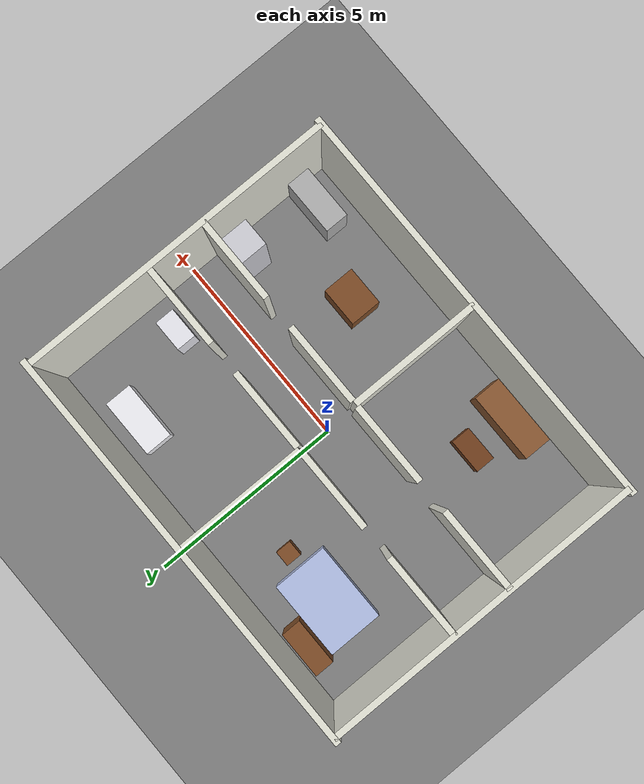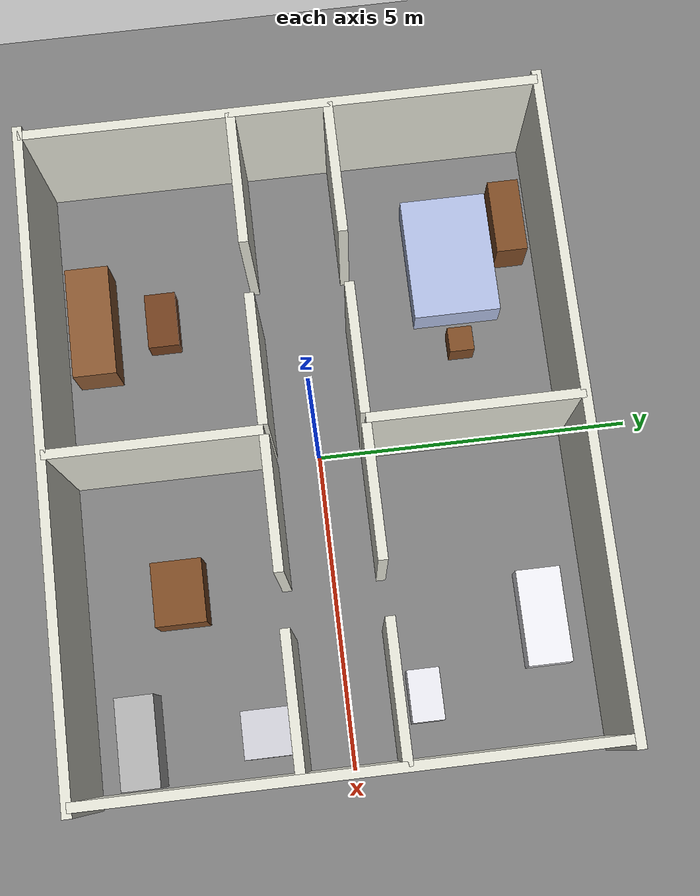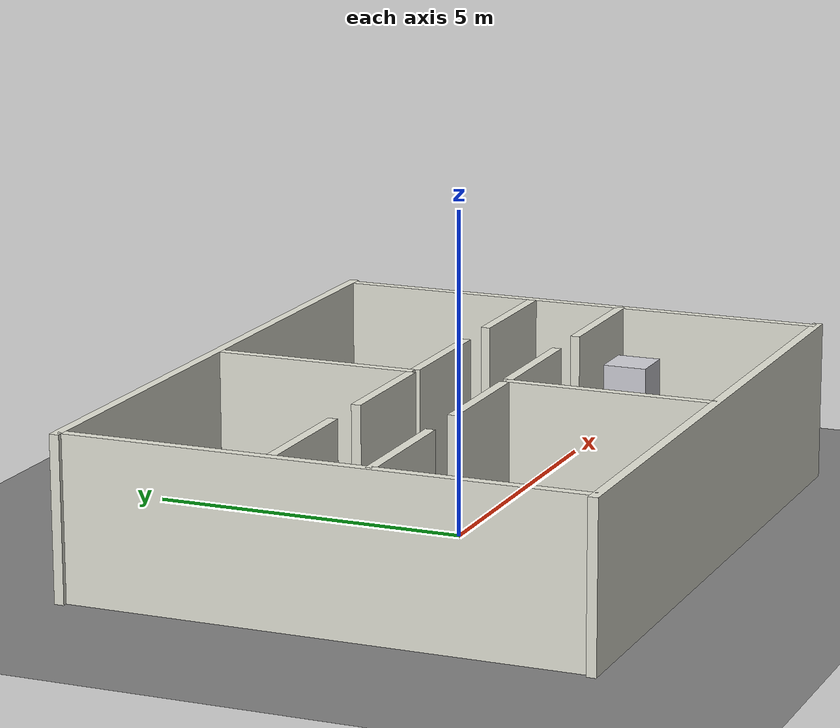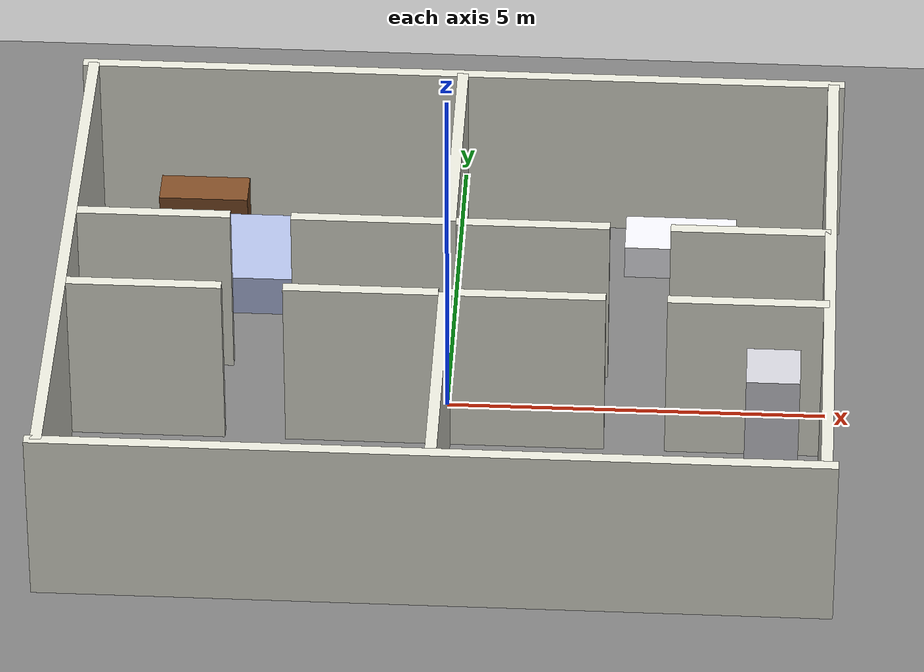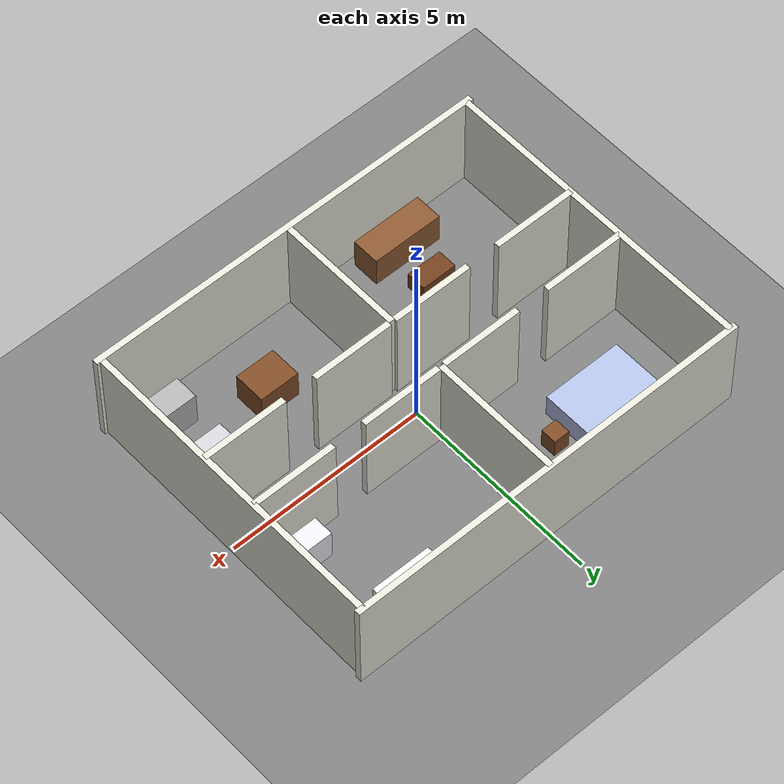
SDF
<?xml version="1.0" ?>
<sdf version="1.6">
  <world name="house">
    <physics name="1ms" type="ignored">
      <max_step_size>0.001</max_step_size>
      <real_time_factor>1.0</real_time_factor>
    </physics>
    <plugin filename="gz-sim-physics-system"
            name="gz::sim::systems::Physics"/>
    <plugin filename="gz-sim-user-commands-system"
            name="gz::sim::systems::UserCommands"/>
    <plugin filename="gz-sim-scene-broadcaster-system"
            name="gz::sim::systems::SceneBroadcaster"/>
    <plugin filename="gz-sim-contact-system"
            name="gz::sim::systems::Contact"/>
    <plugin filename="gz-sim-sensors-system"
            name="gz::sim::systems::Sensors">
      <render_engine>ogre2</render_engine>
    </plugin>
    <plugin filename="gz-sim-imu-system"
            name="gz::sim::systems::Imu"/>

    <light type="directional" name="sun">
      <cast_shadows>true</cast_shadows>
      <pose>0 0 10 0 0 0</pose>
      <diffuse>0.8 0.8 0.8 1</diffuse>
      <specular>0.2 0.2 0.2 1</specular>
      <attenuation>
        <range>1000</range>
        <constant>0.9</constant>
        <linear>0.01</linear>
        <quadratic>0.001</quadratic>
      </attenuation>
      <direction>-0.5 0.1 -0.9</direction>
    </light>

    <!-- Ground plane -->
    <model name="ground_plane">
      <static>true</static>
      <link name="link">
        <collision name="collision">
          <geometry><plane><normal>0 0 1</normal><size>100 100</size></plane></geometry>
        </collision>
        <visual name="visual">
          <geometry><plane><normal>0 0 1</normal><size>100 100</size></plane></geometry>
          <material>
            <ambient>0.5 0.5 0.5 1</ambient>
            <diffuse>0.5 0.5 0.5 1</diffuse>
          </material>
        </visual>
      </link>
    </model>

    <!-- ==================== EXTERIOR WALLS ==================== -->
    <model name="wall_north">
      <static>true</static>
      <pose>0 4 1.25 0 0 0</pose>
      <link name="link">
        <collision name="collision">
          <geometry><box><size>10.3 0.15 2.5</size></box></geometry>
        </collision>
        <visual name="visual">
          <geometry><box><size>10.3 0.15 2.5</size></box></geometry>
          <material>
            <ambient>0.9 0.9 0.85 1</ambient>
            <diffuse>0.9 0.9 0.85 1</diffuse>
          </material>
        </visual>
      </link>
    </model>

    <model name="wall_south">
      <static>true</static>
      <pose>0 -4 1.25 0 0 0</pose>
      <link name="link">
        <collision name="collision">
          <geometry><box><size>10.3 0.15 2.5</size></box></geometry>
        </collision>
        <visual name="visual">
          <geometry><box><size>10.3 0.15 2.5</size></box></geometry>
          <material>
            <ambient>0.9 0.9 0.85 1</ambient>
            <diffuse>0.9 0.9 0.85 1</diffuse>
          </material>
        </visual>
      </link>
    </model>

    <model name="wall_west">
      <static>true</static>
      <pose>-5 0 1.25 0 0 0</pose>
      <link name="link">
        <collision name="collision">
          <geometry><box><size>0.15 8.0 2.5</size></box></geometry>
        </collision>
        <visual name="visual">
          <geometry><box><size>0.15 8.0 2.5</size></box></geometry>
          <material>
            <ambient>0.9 0.9 0.85 1</ambient>
            <diffuse>0.9 0.9 0.85 1</diffuse>
          </material>
        </visual>
      </link>
    </model>

    <model name="wall_east">
      <static>true</static>
      <pose>5 0 1.25 0 0 0</pose>
      <link name="link">
        <collision name="collision">
          <geometry><box><size>0.15 8.0 2.5</size></box></geometry>
        </collision>
        <visual name="visual">
          <geometry><box><size>0.15 8.0 2.5</size></box></geometry>
          <material>
            <ambient>0.9 0.9 0.85 1</ambient>
            <diffuse>0.9 0.9 0.85 1</diffuse>
          </material>
        </visual>
      </link>
    </model>

    <!-- ==================== CENTER DIVIDING WALL (x=0) ==================== -->
    <!-- Bottom section: living room | kitchen -->
    <model name="wall_center_bottom">
      <static>true</static>
      <pose>0 -2.375 1.25 0 0 0</pose>
      <link name="link">
        <collision name="collision">
          <geometry><box><size>0.15 3.25 2.5</size></box></geometry>
        </collision>
        <visual name="visual">
          <geometry><box><size>0.15 3.25 2.5</size></box></geometry>
          <material>
            <ambient>0.9 0.9 0.85 1</ambient>
            <diffuse>0.9 0.9 0.85 1</diffuse>
          </material>
        </visual>
      </link>
    </model>

    <!-- Top section: bedroom | bathroom -->
    <model name="wall_center_top">
      <static>true</static>
      <pose>0 2.375 1.25 0 0 0</pose>
      <link name="link">
        <collision name="collision">
          <geometry><box><size>0.15 3.25 2.5</size></box></geometry>
        </collision>
        <visual name="visual">
          <geometry><box><size>0.15 3.25 2.5</size></box></geometry>
          <material>
            <ambient>0.9 0.9 0.85 1</ambient>
            <diffuse>0.9 0.9 0.85 1</diffuse>
          </material>
        </visual>
      </link>
    </model>

    <!-- ============ NORTH HALLWAY WALL (y=0.75) — bedroom/bathroom side ============ -->
    <!-- Left of bedroom door -->
    <model name="wall_hall_n1">
      <static>true</static>
      <pose>-3.95 0.75 1.25 0 0 0</pose>
      <link name="link">
        <collision name="collision">
          <geometry><box><size>2.1 0.15 2.5</size></box></geometry>
        </collision>
        <visual name="visual">
          <geometry><box><size>2.1 0.15 2.5</size></box></geometry>
          <material>
            <ambient>0.9 0.9 0.85 1</ambient>
            <diffuse>0.9 0.9 0.85 1</diffuse>
          </material>
        </visual>
      </link>
    </model>
    <!-- Door gap: x from -2.9 to -2.1 (bedroom) -->

    <!-- Between bedroom door and center wall -->
    <model name="wall_hall_n2">
      <static>true</static>
      <pose>-1.0875 0.75 1.25 0 0 0</pose>
      <link name="link">
        <collision name="collision">
          <geometry><box><size>2.025 0.15 2.5</size></box></geometry>
        </collision>
        <visual name="visual">
          <geometry><box><size>2.025 0.15 2.5</size></box></geometry>
          <material>
            <ambient>0.9 0.9 0.85 1</ambient>
            <diffuse>0.9 0.9 0.85 1</diffuse>
          </material>
        </visual>
      </link>
    </model>

    <!-- Between center wall and bathroom door -->
    <model name="wall_hall_n3">
      <static>true</static>
      <pose>1.0875 0.75 1.25 0 0 0</pose>
      <link name="link">
        <collision name="collision">
          <geometry><box><size>2.025 0.15 2.5</size></box></geometry>
        </collision>
        <visual name="visual">
          <geometry><box><size>2.025 0.15 2.5</size></box></geometry>
          <material>
            <ambient>0.9 0.9 0.85 1</ambient>
            <diffuse>0.9 0.9 0.85 1</diffuse>
          </material>
        </visual>
      </link>
    </model>
    <!-- Door gap: x from 2.1 to 2.9 (bathroom) -->

    <!-- Right of bathroom door -->
    <model name="wall_hall_n4">
      <static>true</static>
      <pose>3.95 0.75 1.25 0 0 0</pose>
      <link name="link">
        <collision name="collision">
          <geometry><box><size>2.1 0.15 2.5</size></box></geometry>
        </collision>
        <visual name="visual">
          <geometry><box><size>2.1 0.15 2.5</size></box></geometry>
          <material>
            <ambient>0.9 0.9 0.85 1</ambient>
            <diffuse>0.9 0.9 0.85 1</diffuse>
          </material>
        </visual>
      </link>
    </model>

    <!-- ============ SOUTH HALLWAY WALL (y=-0.75) — living/kitchen side ============ -->
    <!-- Left of living room door -->
    <model name="wall_hall_s1">
      <static>true</static>
      <pose>-3.95 -0.75 1.25 0 0 0</pose>
      <link name="link">
        <collision name="collision">
          <geometry><box><size>2.1 0.15 2.5</size></box></geometry>
        </collision>
        <visual name="visual">
          <geometry><box><size>2.1 0.15 2.5</size></box></geometry>
          <material>
            <ambient>0.9 0.9 0.85 1</ambient>
            <diffuse>0.9 0.9 0.85 1</diffuse>
          </material>
        </visual>
      </link>
    </model>
    <!-- Door gap: x from -2.9 to -2.1 (living room) -->

    <!-- Between living room door and center wall -->
    <model name="wall_hall_s2">
      <static>true</static>
      <pose>-1.0875 -0.75 1.25 0 0 0</pose>
      <link name="link">
        <collision name="collision">
          <geometry><box><size>2.025 0.15 2.5</size></box></geometry>
        </collision>
        <visual name="visual">
          <geometry><box><size>2.025 0.15 2.5</size></box></geometry>
          <material>
            <ambient>0.9 0.9 0.85 1</ambient>
            <diffuse>0.9 0.9 0.85 1</diffuse>
          </material>
        </visual>
      </link>
    </model>

    <!-- Between center wall and kitchen door -->
    <model name="wall_hall_s3">
      <static>true</static>
      <pose>1.0875 -0.75 1.25 0 0 0</pose>
      <link name="link">
        <collision name="collision">
          <geometry><box><size>2.025 0.15 2.5</size></box></geometry>
        </collision>
        <visual name="visual">
          <geometry><box><size>2.025 0.15 2.5</size></box></geometry>
          <material>
            <ambient>0.9 0.9 0.85 1</ambient>
            <diffuse>0.9 0.9 0.85 1</diffuse>
          </material>
        </visual>
      </link>
    </model>
    <!-- Door gap: x from 2.1 to 2.9 (kitchen) -->

    <!-- Right of kitchen door -->
    <model name="wall_hall_s4">
      <static>true</static>
      <pose>3.95 -0.75 1.25 0 0 0</pose>
      <link name="link">
        <collision name="collision">
          <geometry><box><size>2.1 0.15 2.5</size></box></geometry>
        </collision>
        <visual name="visual">
          <geometry><box><size>2.1 0.15 2.5</size></box></geometry>
          <material>
            <ambient>0.9 0.9 0.85 1</ambient>
            <diffuse>0.9 0.9 0.85 1</diffuse>
          </material>
        </visual>
      </link>
    </model>

    <!-- ==================== FURNITURE ==================== -->

    <!-- === Living Room (center ~ -2.5, -2.4) === -->
    <model name="couch">
      <static>true</static>
      <pose>-2.5 -3.4 0.4 0 0 0</pose>
      <link name="link">
        <collision name="collision">
          <geometry><box><size>1.8 0.7 0.8</size></box></geometry>
        </collision>
        <visual name="visual">
          <geometry><box><size>1.8 0.7 0.8</size></box></geometry>
          <material>
            <ambient>0.45 0.3 0.15 1</ambient>
            <diffuse>0.55 0.35 0.2 1</diffuse>
          </material>
        </visual>
      </link>
    </model>

    <model name="coffee_table">
      <static>true</static>
      <pose>-2.5 -2.3 0.225 0 0 0</pose>
      <link name="link">
        <collision name="collision">
          <geometry><box><size>0.9 0.5 0.45</size></box></geometry>
        </collision>
        <visual name="visual">
          <geometry><box><size>0.9 0.5 0.45</size></box></geometry>
          <material>
            <ambient>0.35 0.2 0.1 1</ambient>
            <diffuse>0.45 0.25 0.12 1</diffuse>
          </material>
        </visual>
      </link>
    </model>

    <!-- === Kitchen (center ~ 2.5, -2.4) === -->
    <model name="kitchen_table">
      <static>true</static>
      <pose>2.0 -2.4 0.375 0 0 0</pose>
      <link name="link">
        <collision name="collision">
          <geometry><box><size>1.0 0.8 0.75</size></box></geometry>
        </collision>
        <visual name="visual">
          <geometry><box><size>1.0 0.8 0.75</size></box></geometry>
          <material>
            <ambient>0.4 0.25 0.12 1</ambient>
            <diffuse>0.5 0.3 0.15 1</diffuse>
          </material>
        </visual>
      </link>
    </model>

    <model name="counter">
      <static>true</static>
      <pose>4.2 -3.2 0.45 0 0 0</pose>
      <link name="link">
        <collision name="collision">
          <geometry><box><size>1.4 0.6 0.9</size></box></geometry>
        </collision>
        <visual name="visual">
          <geometry><box><size>1.4 0.6 0.9</size></box></geometry>
          <material>
            <ambient>0.6 0.6 0.6 1</ambient>
            <diffuse>0.7 0.7 0.7 1</diffuse>
          </material>
        </visual>
      </link>
    </model>

    <model name="fridge">
      <static>true</static>
      <pose>4.3 -1.2 0.9 0 0 0</pose>
      <link name="link">
        <collision name="collision">
          <geometry><box><size>0.7 0.7 1.8</size></box></geometry>
        </collision>
        <visual name="visual">
          <geometry><box><size>0.7 0.7 1.8</size></box></geometry>
          <material>
            <ambient>0.75 0.75 0.78 1</ambient>
            <diffuse>0.82 0.82 0.85 1</diffuse>
          </material>
        </visual>
      </link>
    </model>

    <!-- === Bedroom (center ~ -2.5, 2.4) === -->
    <model name="bed">
      <static>true</static>
      <pose>-3.0 2.5 0.3 0 0 0</pose>
      <link name="link">
        <collision name="collision">
          <geometry><box><size>2.0 1.4 0.6</size></box></geometry>
        </collision>
        <visual name="visual">
          <geometry><box><size>2.0 1.4 0.6</size></box></geometry>
          <material>
            <ambient>0.6 0.65 0.8 1</ambient>
            <diffuse>0.7 0.75 0.9 1</diffuse>
          </material>
        </visual>
      </link>
    </model>

    <model name="nightstand">
      <static>true</static>
      <pose>-1.6 2.5 0.25 0 0 0</pose>
      <link name="link">
        <collision name="collision">
          <geometry><box><size>0.4 0.4 0.5</size></box></geometry>
        </collision>
        <visual name="visual">
          <geometry><box><size>0.4 0.4 0.5</size></box></geometry>
          <material>
            <ambient>0.4 0.25 0.12 1</ambient>
            <diffuse>0.5 0.3 0.15 1</diffuse>
          </material>
        </visual>
      </link>
    </model>

    <model name="dresser">
      <static>true</static>
      <pose>-3.5 3.5 0.4 0 0 0</pose>
      <link name="link">
        <collision name="collision">
          <geometry><box><size>1.2 0.5 0.8</size></box></geometry>
        </collision>
        <visual name="visual">
          <geometry><box><size>1.2 0.5 0.8</size></box></geometry>
          <material>
            <ambient>0.4 0.25 0.12 1</ambient>
            <diffuse>0.5 0.3 0.15 1</diffuse>
          </material>
        </visual>
      </link>
    </model>

    <!-- === Bathroom (center ~ 2.5, 2.4) === -->
    <model name="bathtub">
      <static>true</static>
      <pose>3.0 3.2 0.25 0 0 0</pose>
      <link name="link">
        <collision name="collision">
          <geometry><box><size>1.5 0.7 0.5</size></box></geometry>
        </collision>
        <visual name="visual">
          <geometry><box><size>1.5 0.7 0.5</size></box></geometry>
          <material>
            <ambient>0.9 0.9 0.92 1</ambient>
            <diffuse>0.95 0.95 0.97 1</diffuse>
          </material>
        </visual>
      </link>
    </model>

    <model name="sink_cabinet">
      <static>true</static>
      <pose>4.0 1.2 0.4 0 0 0</pose>
      <link name="link">
        <collision name="collision">
          <geometry><box><size>0.8 0.5 0.8</size></box></geometry>
        </collision>
        <visual name="visual">
          <geometry><box><size>0.8 0.5 0.8</size></box></geometry>
          <material>
            <ambient>0.85 0.85 0.88 1</ambient>
            <diffuse>0.92 0.92 0.95 1</diffuse>
          </material>
        </visual>
      </link>
    </model>

  </world>
</sdf>
